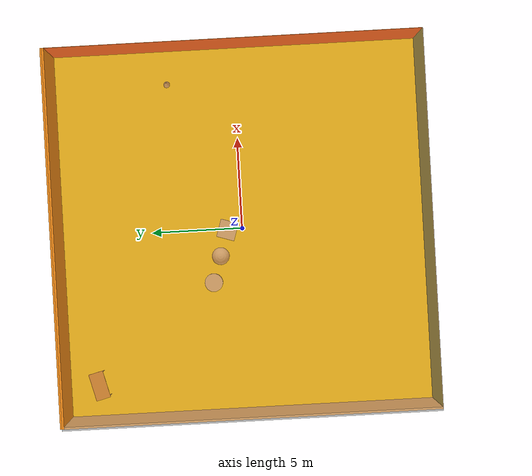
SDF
<sdf version="1.4">
 <world name="default">
  <physics type="ode">
   <max_step_size>0.001</max_step_size>
   <real_time_factor>1</real_time_factor>
   <real_time_update_rate>1000</real_time_update_rate>
   <gravity>0 0 -9.8</gravity>
  </physics>
  <scene><ambient>0.4 0.4 0.4 1</ambient><background>0.7 0.7 0.7 1</background><shadows>1</shadows></scene>
  <model name="Surrounding">
   <static>1</static>
   <link name="Ceiling">
    <collision name="Ceiling_Collision"><geometry><box><size>20 20 0.1</size></box></geometry></collision>
    <visual name="Ceiling_Visual">
     <geometry><box><size>20 20 0.1</size></box></geometry>
     <material>
      <script>
       <uri>file://media/materials/scripts/gazebo.material</uri>
       <name>Gazebo/OrangeTransparent</name>
      </script>
     </material>
    </visual>
    <pose>0 0 4.05 0 0 0</pose>
   </link>
   <link name="Wall_South">
    <collision name="Wall_South_Collision">
     <geometry><box><size>20 0 4</size></box></geometry>
     <pose>0 0 2 0 -0 0</pose>
    </collision>
    <visual name="Wall_South_Visual">
     <pose>0 0 2 0 -0 0</pose>
     <geometry><box><size>20 0 4</size></box></geometry>
     <material>
      <script>
       <uri>file://media/materials/scripts/gazebo.material</uri>
       <name>Gazebo/TurquoiseGlowOutline</name>
      </script>
     </material>
    </visual>
    <velocity_decay><linear>0</linear><angular>0</angular></velocity_decay>
    <pose>0 -10 0 0 -0 0</pose>
   </link>
   <link name="Wall_East">
    <collision name="Wall_21_Collision">
     <geometry><box><size>20 0 4</size></box></geometry>
     <pose>0 0 2 0 -0 0</pose>
    </collision>
    <visual name="Wall_21_Visual">
     <pose>0 0 2 0 -0 0</pose>
     <geometry><box><size>20 0 4</size></box></geometry>
     <material>
      <script><uri>file://media/materials/scripts/gazebo.material</uri><name>Gazebo/Red</name></script>
     </material>
    </visual>
    <velocity_decay><linear>0</linear><angular>0</angular></velocity_decay>
    <pose>10 0 0 0 -0 1.5708</pose>
   </link>
   <link name="Wall_North">
    <collision name="Wall_22_Collision">
     <geometry><box><size>20 0.2 4</size></box></geometry>
     <pose>0 0 2 0 -0 0</pose>
    </collision>
    <visual name="Wall_22_Visual">
     <pose>0 0 2 0 -0 0</pose>
     <geometry><box><size>20 0.2 4</size></box></geometry>
     <material>
      <script><uri>file://media/materials/scripts/gazebo.material</uri><name>Gazebo/Orange</name></script>
     </material>
    </visual>
    <velocity_decay><linear>0</linear><angular>0</angular></velocity_decay>
    <pose>0 10 0 0 -0 0</pose>
   </link>
   <link name="Wall_West">
    <collision name="Wall_23_Collision">
     <geometry><box><size>20 0.2 4</size></box></geometry>
     <pose>0 0 2 0 -0 0</pose>
    </collision>
    <visual name="Wall_23_Visual">
     <pose>0 0 2 0 -0 0</pose>
     <geometry><box><size>20 0.2 4</size></box></geometry>
     <material>
      <script><uri>file://media/materials/scripts/gazebo.material</uri><name>Gazebo/PioneerBody</name></script>
     </material>
    </visual>
    <velocity_decay><linear>0</linear><angular>0</angular></velocity_decay>
    <pose>-10 0 0 0 0 -1.5708</pose>
   </link>
   <link name="Ground_link">
    <collision name="collision">
     <pose>0 0 .05 0 -0 0</pose>
     <geometry><box><size>20 20 0.1</size></box></geometry>
    </collision>
    <visual name="visual">
     <pose>0 0 .05 0 -0 0</pose>
     <geometry><box><size>20 20 0.1</size></box></geometry>
     <material>
      <script><uri>file://media/materials/scripts/gazebo.material</uri><name>Gazebo/YellowGlow</name></script>
     </material>
    </visual>
   </link>
   <static>1</static>
  </model>
  <spherical_coordinates>
   <surface_model>EARTH_WGS84</surface_model>
   <latitude_deg>0</latitude_deg>
   <longitude_deg>0</longitude_deg>
   <elevation>0</elevation>
   <heading_deg>0</heading_deg>
  </spherical_coordinates>
  <light name="lightball_0" type="diffuse">
   <diffuse>0.8 0.8 0.8 1</diffuse>
   <specular>0.2 0.2 0.2 1</specular>
   <attenuation>
    <range>100</range>
    <constant>0.7</constant>
    <linear>0.01</linear>
    <quadratic>0.001</quadratic>
   </attenuation>
   <direction>-0.5 0.1 -0.9</direction>
   <pose>0.535357488012 -9.6072583653 1.60186432186 0 0 0</pose>
  </light>
  <light name="lightball_1" type="diffuse">
   <diffuse>0.8 0.8 0.8 1</diffuse>
   <specular>0.2 0.2 0.2 1</specular>
   <attenuation>
    <range>100</range>
    <constant>0.7</constant>
    <linear>0.01</linear>
    <quadratic>0.001</quadratic>
   </attenuation>
   <direction>-0.5 0.1 -0.9</direction>
   <pose>1.71199746343 -9.00836030644 1.36569746075 0 0 0</pose>
  </light>
  <light name="lightball_2" type="diffuse">
   <diffuse>0.8 0.8 0.8 1</diffuse>
   <specular>0.2 0.2 0.2 1</specular>
   <attenuation>
    <range>100</range>
    <constant>0.7</constant>
    <linear>0.01</linear>
    <quadratic>0.001</quadratic>
   </attenuation>
   <direction>-0.5 0.1 -0.9</direction>
   <pose>3.40674611718 9.31829974275 3.06837185005 0 0 0</pose>
  </light>
  <light name="lightball_3" type="diffuse">
   <diffuse>0.8 0.8 0.8 1</diffuse>
   <specular>0.2 0.2 0.2 1</specular>
   <attenuation>
    <range>100</range>
    <constant>0.7</constant>
    <linear>0.01</linear>
    <quadratic>0.001</quadratic>
   </attenuation>
   <direction>-0.5 0.1 -0.9</direction>
   <pose>9.39416863054 1.82892319473 3.38684689576 0 0 0</pose>
  </light>
  <include><uri>model://table</uri><pose>-8.17163481231 8.2568346425 0 0 0 0.252107725189</pose></include>
  <include>
   <uri>model://textured_shapes</uri>
   <pose>-1.46195702046 1.27097358799 0 0 0 1.26470223471</pose>
  </include>
  <include>
   <uri>model://construction_cone</uri>
   <pose>8.16966624814 3.74561904181 0 0 0 2.47791662652</pose>
  </include>
 </world>
</sdf>

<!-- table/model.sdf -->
<sdf version="1.5">
  <model name="table">
    <static>true</static>
    <link name="link">
      <collision name="surface">
        <pose>0 0 1.0 0 0 0</pose>
        <geometry>
          <box>
            <size>1.5 0.8 0.03</size>
          </box>
        </geometry>
        <surface>
          <friction>
            <ode>
              <mu>0.6</mu>
              <mu2>0.6</mu2>
            </ode>
          </friction>
        </surface>
      </collision>
      <visual name="visual1">
        <pose>0 0 1.0 0 0 0</pose>
        <geometry>
          <box>
            <size>1.5 0.8 0.03</size>
          </box>
        </geometry>
        <material>
          <script>
            <uri>model://media/materials/scripts/gazebo.material</uri>
            <name>Gazebo/Wood</name>
          </script>
        </material>
      </visual>
      <collision name="front_left_leg">
        <pose>0.68 0.38 0.5 0 0 0</pose>
        <geometry>
          <cylinder>
            <radius>0.02</radius>
            <length>1.0</length>
          </cylinder>
        </geometry>
      </collision>
      <visual name="front_left_leg">
        <pose>0.68 0.38 0.5 0 0 0</pose>
        <geometry>
          <cylinder>
            <radius>0.02</radius>
            <length>1.0</length>
          </cylinder>
        </geometry>
        <material>
          <script>
            <uri>model://media/materials/scripts/gazebo.material</uri>
            <name>Gazebo/Grey</name>
          </script>
        </material>
      </visual>
      <collision name="front_right_leg">
        <pose>0.68 -0.38 0.5 0 0 0</pose>
        <geometry>
          <cylinder>
            <radius>0.02</radius>
            <length>1.0</length>
          </cylinder>
        </geometry>
      </collision>
      <visual name="front_right_leg">
        <pose>0.68 -0.38 0.5 0 0 0</pose>
        <geometry>
          <cylinder>
            <radius>0.02</radius>
            <length>1.0</length>
          </cylinder>
        </geometry>
        <material>
          <script>
            <uri>model://media/materials/scripts/gazebo.material</uri>
            <name>Gazebo/Grey</name>
          </script>
        </material>
      </visual>
      <collision name="back_right_leg">
        <pose>-0.68 -0.38 0.5 0 0 0</pose>
        <geometry>
          <cylinder>
            <radius>0.02</radius>
            <length>1.0</length>
          </cylinder>
        </geometry>
      </collision>
      <visual name="back_right_leg">
        <pose>-0.68 -0.38 0.5 0 0 0</pose>
        <geometry>
          <cylinder>
            <radius>0.02</radius>
            <length>1.0</length>
          </cylinder>
        </geometry>
        <material>
          <script>
            <uri>model://media/materials/scripts/gazebo.material</uri>
            <name>Gazebo/Grey</name>
          </script>
        </material>
      </visual>
      <collision name="back_left_leg">
        <pose>-0.68 0.38 0.5 0 0 0</pose>
        <geometry>
          <cylinder>
            <radius>0.02</radius>
            <length>1.0</length>
          </cylinder>
        </geometry>
      </collision>
      <visual name="back_left_leg">
        <pose>-0.68 0.38 0.5 0 0 0</pose>
        <geometry>
          <cylinder>
            <radius>0.02</radius>
            <length>1.0</length>
          </cylinder>
        </geometry>
        <material>
          <script>
            <uri>model://media/materials/scripts/gazebo.material</uri>
            <name>Gazebo/Grey</name>
          </script>
        </material>
      </visual>
    </link>
  </model>
</sdf>

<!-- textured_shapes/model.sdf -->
<sdf version="1.6">
  <model name="textured_shapes">
    <pose>0 0 0.5 0 0 0</pose>
    <link name="box">
      <pose>0 -1.5 0 0 0 0</pose>
      <collision name="collision">
        <geometry>
          <box>
            <size>1 1 1</size>
          </box>
        </geometry>
      </collision>
      <visual name="visual">
        <geometry>
          <box>
            <size>1 1 1</size>
          </box>
        </geometry>
        <material>
          <script>
            <uri>model://../model_source/models/textured_shapes/materials/scripts</uri>
            <uri>model://../model_source/models/textured_shapes/materials/textures</uri>
            <name>TexturedShape/Squares</name>
          </script>
        </material>
      </visual>
    </link>
    <link name="sphere">
      <collision name="collision">
        <geometry>
          <sphere>
            <radius>0.5</radius>
          </sphere>
        </geometry>
      </collision>
      <visual name="visual">
        <geometry>
          <sphere>
            <radius>0.5</radius>
          </sphere>
        </geometry>
        <material>
          <script>
            <uri>model://../model_source/models/textured_shapes/materials/scripts</uri>
            <uri>model://../model_source/models/textured_shapes/materials/textures</uri>
            <name>TexturedShape/Squares</name>
          </script>
        </material>
      </visual>
    </link>
    <link name="cylinder">
      <pose>0 1.5 0 0 0 0</pose>
      <collision name="collision">
        <geometry>
          <cylinder>
            <radius>0.5</radius>
            <length>1</length>
          </cylinder>
        </geometry>
      </collision>
      <visual name="visual">
        <geometry>
          <cylinder>
            <radius>0.5</radius>
            <length>1</length>
          </cylinder>
        </geometry>
        <material>
          <script>
            <uri>model://../model_source/models/textured_shapes/materials/scripts</uri>
            <uri>model://../model_source/models/textured_shapes/materials/textures</uri>
            <name>TexturedShape/Squares</name>
          </script>
        </material>
      </visual>
    </link>
  </model>
</sdf>

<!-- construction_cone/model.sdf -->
<sdf version="1.5">
  <model name="Construction Cone">
    <link name="link">
      <collision name="collision">
        <geometry>
          <mesh>
            <scale>10 10 10</scale>
            <uri>file://isr-testbed/construction_cone/meshes/construction_cone.dae</uri>
          </mesh>
        </geometry>
      </collision>
      <visual name="visual">
        <geometry>
          <mesh>
            <scale>10 10 10</scale>
            <uri>file://isr-testbed/construction_cone/meshes/construction_cone.dae</uri>
          </mesh>
        </geometry>
      </visual>
    </link>
  </model>
</sdf>
